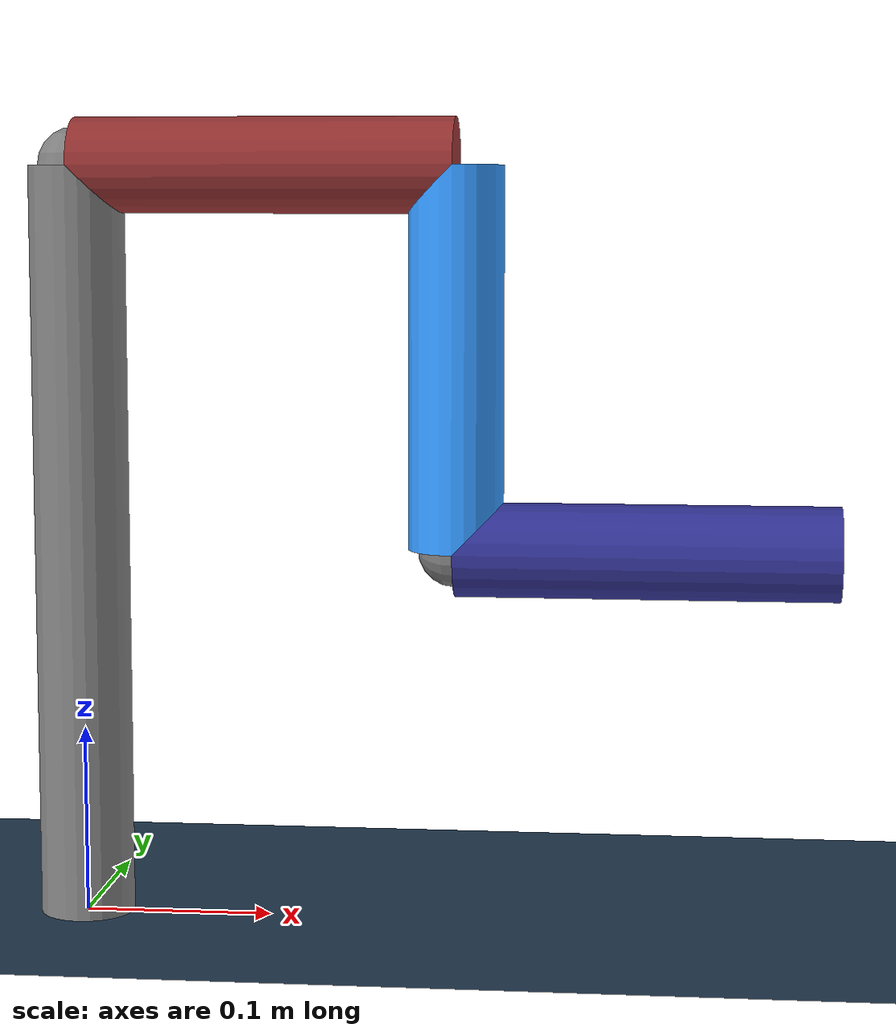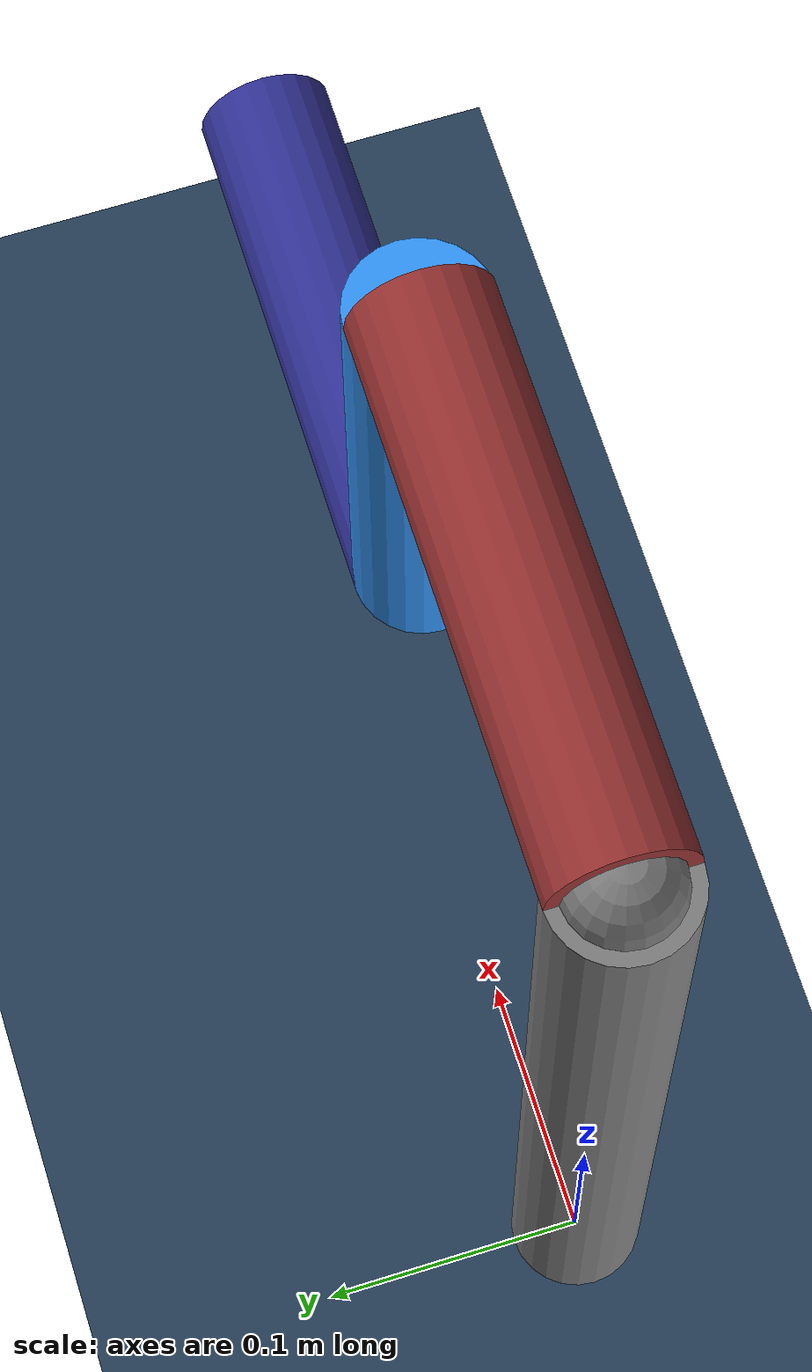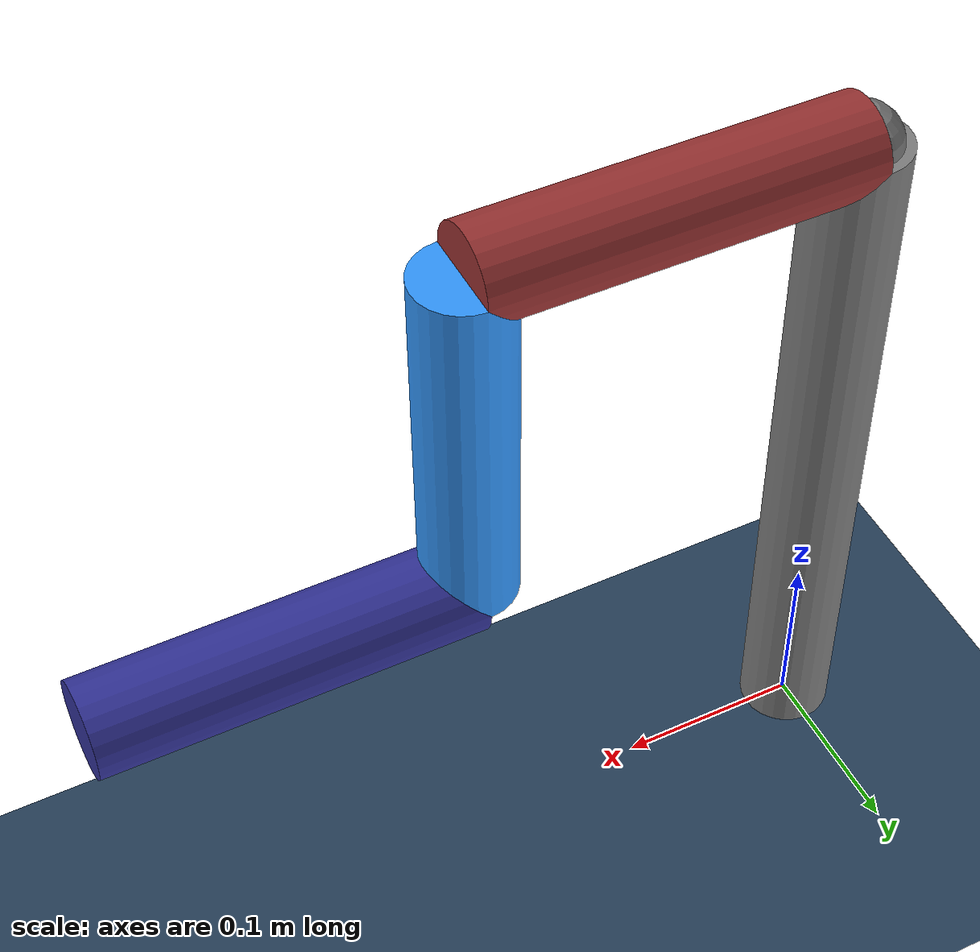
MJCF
<mujoco model="3R_robot">
    <compiler angle="degree"/>
    <asset>
        <texture name="grid" type="2d" builtin="checker" rgb1=".1 .2 .3"
        rgb2=".2 .3 .4" width="300" height="300" mark="none"/>
        <material name="grid" texture="grid" texrepeat="6 6" texuniform="true" reflectance=".2"/>
    </asset>
    <default>
        <joint type="hinge" axis="0 0 1" limited="true"/>
        <geom type="cylinder" size=".025 .1" />
    </default>

    <option gravity="0 0 0"/>

    <worldbody>
        <light diffuse=".5 .5 .5" pos="0 0 3" dir="0 0 -1"/>
        <geom type="plane" size="1 1 0.1" material="grid"/>

        <site name="begin_effector" pos="0 0 0.4" size="0.02"/>
        <!-- Base of the Robot -->
        <body name="BaseLink" pos="0 0 0.2" euler="0 0 -90">
            <geom type="cylinder" pos="0 0 0" size=".025 .2"/>

            <!-- Link 1 and Joint 1 -->
            <body name="link1" pos="0 0.1 0.2" euler="-90 0 0">
                <joint name="joint1" pos="0 0 -0.1" range="-inf inf" axis="0 -1 0" damping="1"/>
                <geom pos="0 0 0" rgba=".6 .2 .2 1"/>

                <!-- Link 2 and Joint 2 -->
                <body name="link2" pos="0 0.1 0.1" euler="-90 0 0">
                    <joint name="joint2" pos="0 0 -0.1" range="-inf inf" axis="1 0 0" damping="1"/>
                    <geom pos="0 0 0" rgba=".2 .6 1 1"/>

                    <!-- Link 3 and Joint 3 (New) -->
                    <body name="link3" pos="0 -0.1 0.1" euler="90 0 90">
                        <joint name="joint3" pos="0 0 -0.1" range="-inf inf" axis="0 0 1" damping="1"/>
                        <geom pos="0 0 0" rgba=".2 .2 .6 1"/>

                        <!-- End Effector -->
                        <site name="end_effector" pos="0 0 -0.1" size="0.02"/>

                    </body>
                </body>
            </body>
        </body>
    </worldbody>

    <!-- Actuators for controlling the joints -->
    <actuator>
        <!-- Motor control for joint1 (torque control) -->

        <position name="joint1_position_control" joint="joint1" kp="10" kv="0.02" ctrlrange="-3.14 3.14"/>
        <position name="joint2_position_control" joint="joint2" kp="10" kv="0.02" ctrlrange="-3.14 3.14"/>
        <position name="joint3_position_control" joint="joint3" kp="10" kv="0.02" ctrlrange="-3.14 3.14"/>

    </actuator>

    <!-- Sensors for monitoring joint positions and torques -->
    <sensor>
        <jointpos name="joint1_position_sensor" joint="joint1"/> <!-- Position sensor for joint1 -->
        <jointpos name="joint2_position_sensor" joint="joint2"/> <!-- Position sensor for joint2 -->
        <jointpos name="joint3_position_sensor" joint="joint3"/> <!-- Position sensor for joint3 -->
    </sensor>
    <keyframe>
        <!-- Initial configuration for three joints -->
        <key name="initial_pose" qpos="0 0 0"/>
        <!-- Bent configuration for three joints -->
        <key name="bent_pose" qpos="0 0 0"/>
    </keyframe>

</mujoco>
